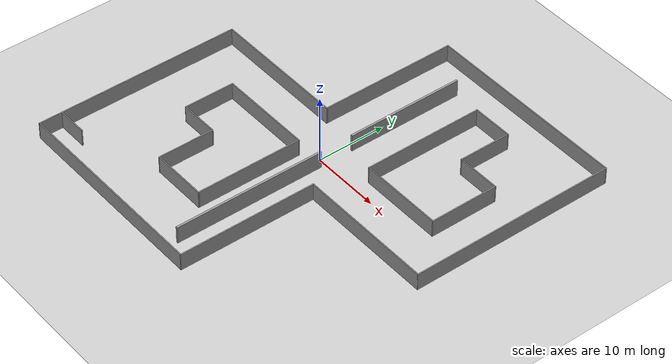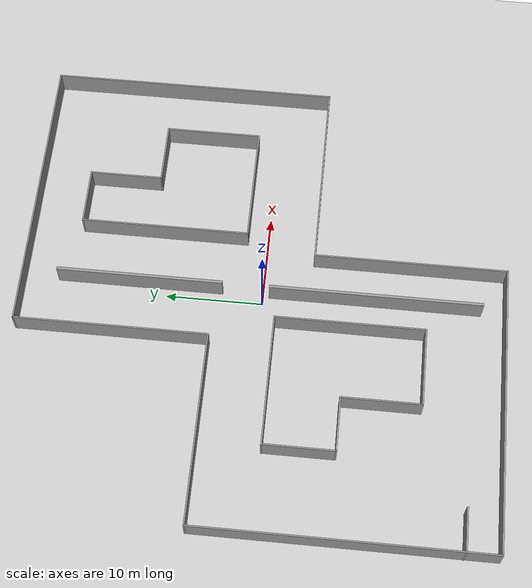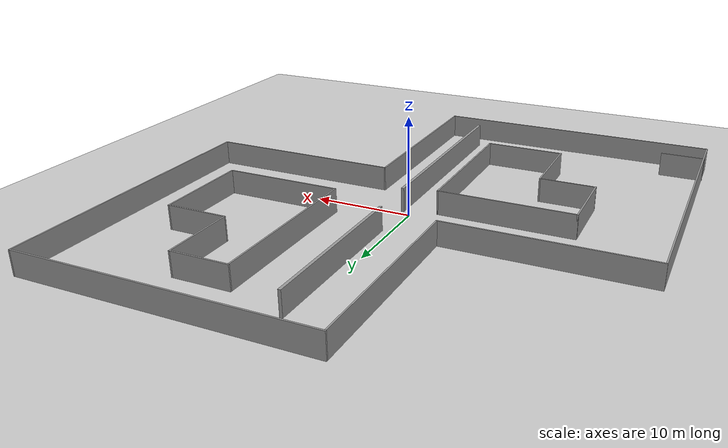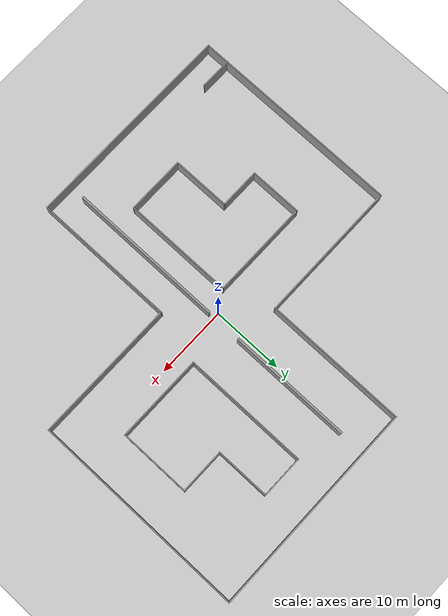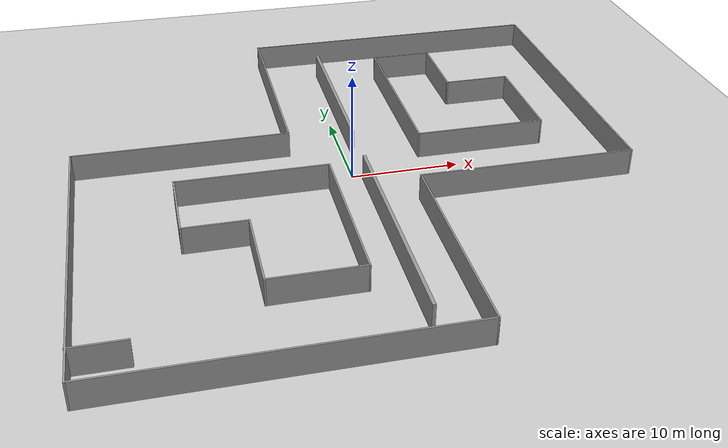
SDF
<sdf version="1.6">
 <world name="default">
  <light name="sun" type="directional">
   <pose>0 0 10 0 -0 0</pose>
   <diffuse>0.8 0.8 0.8 1</diffuse>
   <specular>0.2 0.2 0.2 1</specular>
   <attenuation>
    <range>1000</range>
    <constant>0.9</constant>
    <linear>0.01</linear>
    <quadratic>0.001</quadratic>
   </attenuation>
   <direction>-0.5 0.1 -0.9</direction>
  </light>
  <model name="ground_plane">
   <static>1</static>
   <link name="link">
    <collision name="collision">
     <geometry><plane><normal>0 0 1</normal><size>100 100</size></plane></geometry>
     <surface>
      <contact><collide_bitmask>65535</collide_bitmask></contact>
      <friction><ode><mu>100</mu><mu2>50</mu2></ode></friction>
     </surface>
    </collision>
    <visual name="visual">
     <cast_shadows>0</cast_shadows>
     <geometry><plane><normal>0 0 1</normal><size>100 100</size></plane></geometry>
     <material>
      <script><uri>file://media/materials/scripts/gazebo.material</uri><name>Gazebo/Grey</name></script>
     </material>
    </visual>
   </link>
  </model>
  <gravity>0 0 -9.8</gravity>
  <magnetic_field>6e-06 2.3e-05 -4.2e-05</magnetic_field>
  <atmosphere type="adiabatic"/>
  <physics name="default_physics" default="0" type="ode">
   <max_step_size>0.001</max_step_size>
   <real_time_factor>1</real_time_factor>
   <real_time_update_rate>1000</real_time_update_rate>
  </physics>
  <scene><ambient>0.4 0.4 0.4 1</ambient><background>0.7 0.7 0.7 1</background><shadows>1</shadows></scene>
  <audio><device>default</device></audio>
  <spherical_coordinates>
   <surface_model>EARTH_WGS84</surface_model>
   <latitude_deg>0</latitude_deg>
   <longitude_deg>0</longitude_deg>
   <elevation>0</elevation>
   <heading_deg>0</heading_deg>
  </spherical_coordinates>
  <model name="ext_wall">
   <link name="Wall_35">
    <collision name="Wall_35_Collision">
     <geometry><box><size>30 0.15 2.5</size></box></geometry>
     <pose>0 0 1.25 0 -0 0</pose>
    </collision>
    <visual name="Wall_35_Visual">
     <pose>0 0 1.25 0 -0 0</pose>
     <geometry><box><size>30 0.15 2.5</size></box></geometry>
     <material>
      <script><uri>file://media/materials/scripts/gazebo.material</uri><name>Gazebo/Grey</name></script>
      <ambient>1 1 1 1</ambient>
     </material>
     <meta><layer>0</layer></meta>
    </visual>
    <pose>-24.8294 -9.925 0 0 -0 -1.5708</pose>
   </link>
   <link name="Wall_37">
    <collision name="Wall_37_Collision">
     <geometry><box><size>30 0.15 2.5</size></box></geometry>
     <pose>0 0 1.25 0 -0 0</pose>
    </collision>
    <visual name="Wall_37_Visual">
     <pose>0 0 1.25 0 -0 0</pose>
     <geometry><box><size>30 0.15 2.5</size></box></geometry>
     <material>
      <script><uri>file://media/materials/scripts/gazebo.material</uri><name>Gazebo/Grey</name></script>
      <ambient>1 1 1 1</ambient>
     </material>
     <meta><layer>0</layer></meta>
    </visual>
    <pose>-9.90441 -24.85 0 0 -0 0</pose>
   </link>
   <link name="Wall_38">
    <collision name="Wall_38_Collision">
     <geometry><box><size>20 0.15 2.5</size></box></geometry>
     <pose>0 0 1.25 0 -0 0</pose>
    </collision>
    <visual name="Wall_38_Visual">
     <pose>0 0 1.25 0 -0 0</pose>
     <geometry><box><size>20 0.15 2.5</size></box></geometry>
     <material>
      <script><uri>file://media/materials/scripts/gazebo.material</uri><name>Gazebo/Grey</name></script>
      <ambient>1 1 1 1</ambient>
     </material>
     <meta><layer>0</layer></meta>
    </visual>
    <pose>5.0206 -14.925 0 0 -0 1.5708</pose>
   </link>
   <link name="Wall_45">
    <collision name="Wall_45_Collision">
     <geometry><box><size>20 0.15 2.5</size></box></geometry>
     <pose>0 0 1.25 0 -0 0</pose>
    </collision>
    <visual name="Wall_45_Visual">
     <pose>0 0 1.25 0 -0 0</pose>
     <geometry><box><size>20 0.15 2.5</size></box></geometry>
     <material>
      <script><uri>file://media/materials/scripts/gazebo.material</uri><name>Gazebo/Grey</name></script>
      <ambient>1 1 1 1</ambient>
     </material>
     <meta><layer>0</layer></meta>
    </visual>
    <pose>14.9456 -5 0 0 -0 0</pose>
   </link>
   <link name="Wall_46">
    <collision name="Wall_46_Collision">
     <geometry><box><size>30 0.15 2.5</size></box></geometry>
     <pose>0 0 1.25 0 -0 0</pose>
    </collision>
    <visual name="Wall_46_Visual">
     <pose>0 0 1.25 0 -0 0</pose>
     <geometry><box><size>30 0.15 2.5</size></box></geometry>
     <material>
      <script><uri>file://media/materials/scripts/gazebo.material</uri><name>Gazebo/Grey</name></script>
      <ambient>1 1 1 1</ambient>
     </material>
     <meta><layer>0</layer></meta>
    </visual>
    <pose>24.8706 9.925 0 0 -0 1.5708</pose>
   </link>
   <link name="Wall_47">
    <collision name="Wall_47_Collision">
     <geometry><box><size>30 0.15 2.5</size></box></geometry>
     <pose>0 0 1.25 0 -0 0</pose>
    </collision>
    <visual name="Wall_47_Visual">
     <pose>0 0 1.25 0 -0 0</pose>
     <geometry><box><size>30 0.15 2.5</size></box></geometry>
     <material>
      <script><uri>file://media/materials/scripts/gazebo.material</uri><name>Gazebo/Grey</name></script>
      <ambient>1 1 1 1</ambient>
     </material>
     <meta><layer>0</layer></meta>
    </visual>
    <pose>9.9456 24.85 0 0 -0 3.14159</pose>
   </link>
   <link name="Wall_50">
    <collision name="Wall_50_Collision">
     <geometry><box><size>20 0.15 2.5</size></box></geometry>
     <pose>0 0 1.25 0 -0 0</pose>
    </collision>
    <visual name="Wall_50_Visual">
     <pose>0 0 1.25 0 -0 0</pose>
     <geometry><box><size>20 0.15 2.5</size></box></geometry>
     <material>
      <script><uri>file://media/materials/scripts/gazebo.material</uri><name>Gazebo/Grey</name></script>
      <ambient>1 1 1 1</ambient>
     </material>
     <meta><layer>0</layer></meta>
    </visual>
    <pose>-4.9794 14.925 0 0 -0 -1.5708</pose>
   </link>
   <link name="Wall_51">
    <collision name="Wall_51_Collision">
     <geometry><box><size>20 0.15 2.5</size></box></geometry>
     <pose>0 0 1.25 0 -0 0</pose>
    </collision>
    <visual name="Wall_51_Visual">
     <pose>0 0 1.25 0 -0 0</pose>
     <geometry><box><size>20 0.15 2.5</size></box></geometry>
     <material>
      <script><uri>file://media/materials/scripts/gazebo.material</uri><name>Gazebo/Grey</name></script>
      <ambient>1 1 1 1</ambient>
     </material>
     <meta><layer>0</layer></meta>
    </visual>
    <pose>-14.9044 5 0 0 -0 3.14159</pose>
   </link>
   <link name="Wall_53">
    <collision name="Wall_53_Collision">
     <geometry><box><size>13.8508 0.15 2.5</size></box></geometry>
     <pose>0 0 1.25 0 -0 0</pose>
    </collision>
    <visual name="Wall_53_Visual">
     <pose>0 0 1.25 0 -0 0</pose>
     <geometry><box><size>13.8508 0.15 2.5</size></box></geometry>
     <material>
      <script><uri>file://media/materials/scripts/gazebo.material</uri><name>Gazebo/Grey</name></script>
      <ambient>1 1 1 1</ambient>
     </material>
     <meta><layer>0</layer></meta>
    </visual>
    <pose>-9.24926 -1.45281 0 0 -0 0</pose>
   </link>
   <link name="Wall_54">
    <collision name="Wall_54_Collision">
     <geometry><box><size>15.5 0.15 2.5</size></box></geometry>
     <pose>0 0 1.25 0 -0 0</pose>
    </collision>
    <visual name="Wall_54_Visual">
     <pose>0 0 1.25 0 -0 0</pose>
     <geometry><box><size>15.5 0.15 2.5</size></box></geometry>
     <material>
      <script><uri>file://media/materials/scripts/gazebo.material</uri><name>Gazebo/Grey</name></script>
      <ambient>1 1 1 1</ambient>
     </material>
     <meta><layer>0</layer></meta>
    </visual>
    <pose>-2.39926 -9.12781 0 0 -0 -1.5708</pose>
   </link>
   <link name="Wall_55">
    <collision name="Wall_55_Collision">
     <geometry><box><size>8.25 0.15 2.5</size></box></geometry>
     <pose>0 0 1.25 0 -0 0</pose>
    </collision>
    <visual name="Wall_55_Visual">
     <pose>0 0 1.25 0 -0 0</pose>
     <geometry><box><size>8.25 0.15 2.5</size></box></geometry>
     <material>
      <script><uri>file://media/materials/scripts/gazebo.material</uri><name>Gazebo/Grey</name></script>
      <ambient>1 1 1 1</ambient>
     </material>
     <meta><layer>0</layer></meta>
    </visual>
    <pose>-6.44926 -16.8028 0 0 -0 3.14159</pose>
   </link>
   <link name="Wall_56">
    <collision name="Wall_56_Collision">
     <geometry><box><size>8.25 0.15 2.5</size></box></geometry>
     <pose>0 0 1.25 0 -0 0</pose>
    </collision>
    <visual name="Wall_56_Visual">
     <pose>0 0 1.25 0 -0 0</pose>
     <geometry><box><size>8.25 0.15 2.5</size></box></geometry>
     <material>
      <script><uri>file://media/materials/scripts/gazebo.material</uri><name>Gazebo/Grey</name></script>
      <ambient>1 1 1 1</ambient>
     </material>
     <meta><layer>0</layer></meta>
    </visual>
    <pose>-10.4993 -12.7528 0 0 -0 1.5708</pose>
   </link>
   <link name="Wall_57">
    <collision name="Wall_57_Collision">
     <geometry><box><size>5.75 0.15 2.5</size></box></geometry>
     <pose>0 0 1.25 0 -0 0</pose>
    </collision>
    <visual name="Wall_57_Visual">
     <pose>0 0 1.25 0 -0 0</pose>
     <geometry><box><size>5.75 0.15 2.5</size></box></geometry>
     <material>
      <script><uri>file://media/materials/scripts/gazebo.material</uri><name>Gazebo/Grey</name></script>
      <ambient>1 1 1 1</ambient>
     </material>
     <meta><layer>0</layer></meta>
    </visual>
    <pose>-13.2993 -8.70281 0 0 -0 3.14159</pose>
   </link>
   <link name="Wall_61">
    <collision name="Wall_61_Collision">
     <geometry><box><size>7.4 0.15 2.5</size></box></geometry>
     <pose>0 0 1.25 0 -0 0</pose>
    </collision>
    <visual name="Wall_61_Visual">
     <pose>0 0 1.25 0 -0 0</pose>
     <geometry><box><size>7.4 0.15 2.5</size></box></geometry>
     <material>
      <script><uri>file://media/materials/scripts/gazebo.material</uri><name>Gazebo/Grey</name></script>
      <ambient>1 1 1 1</ambient>
     </material>
     <meta><layer>0</layer></meta>
    </visual>
    <pose>-16.0993 -5.07781 0 0 -0 1.5708</pose>
   </link>
   <link name="Wall_81">
    <collision name="Wall_81_Collision">
     <geometry><box><size>21.8997 0.3 2.5</size></box></geometry>
     <pose>0 0 1.25 0 -0 0</pose>
    </collision>
    <visual name="Wall_81_Visual">
     <pose>0 0 1.25 0 -0 0</pose>
     <geometry><box><size>21.8997 0.3 2.5</size></box></geometry>
     <material>
      <script><uri>file://media/materials/scripts/gazebo.material</uri><name>Gazebo/Grey</name></script>
      <ambient>1 1 1 1</ambient>
     </material>
     <meta><layer>0</layer></meta>
    </visual>
    <pose>0.968843 -11.554 0 0 -0 1.5708</pose>
   </link>
   <link name="Wall_83">
    <collision name="Wall_83_Collision">
     <geometry><box><size>17.1497 0.3 2.5</size></box></geometry>
     <pose>0 0 1.25 0 -0 0</pose>
    </collision>
    <visual name="Wall_83_Visual">
     <pose>0 0 1.25 0 -0 0</pose>
     <geometry><box><size>17.1497 0.3 2.5</size></box></geometry>
     <material>
      <script><uri>file://media/materials/scripts/gazebo.material</uri><name>Gazebo/Grey</name></script>
      <ambient>1 1 1 1</ambient>
     </material>
     <meta><layer>0</layer></meta>
    </visual>
    <pose>0.968843 12.771 0 0 -0 1.5708</pose>
   </link>
   <link name="Wall_85">
    <collision name="Wall_85_Collision">
     <geometry><box><size>17.5 0.15 2.5</size></box></geometry>
     <pose>0 0 1.25 0 -0 0</pose>
    </collision>
    <visual name="Wall_85_Visual">
     <pose>0 0 1.25 0 -0 0</pose>
     <geometry><box><size>17.5 0.15 2.5</size></box></geometry>
     <material>
      <script><uri>file://media/materials/scripts/gazebo.material</uri><name>Gazebo/Grey</name></script>
      <ambient>1 1 1 1</ambient>
     </material>
     <meta><layer>0</layer></meta>
    </visual>
    <pose>6.90221 10.8782 0 0 -0 -1.5708</pose>
   </link>
   <link name="Wall_86">
    <collision name="Wall_86_Collision">
     <geometry><box><size>12.25 0.15 2.5</size></box></geometry>
     <pose>0 0 1.25 0 -0 0</pose>
    </collision>
    <visual name="Wall_86_Visual">
     <pose>0 0 1.25 0 -0 0</pose>
     <geometry><box><size>12.25 0.15 2.5</size></box></geometry>
     <material>
      <script><uri>file://media/materials/scripts/gazebo.material</uri><name>Gazebo/Grey</name></script>
      <ambient>1 1 1 1</ambient>
     </material>
     <meta><layer>0</layer></meta>
    </visual>
    <pose>12.9522 2.20321 0 0 -0 0</pose>
   </link>
   <link name="Wall_87">
    <collision name="Wall_87_Collision">
     <geometry><box><size>10 0.15 2.5</size></box></geometry>
     <pose>0 0 1.25 0 -0 0</pose>
    </collision>
    <visual name="Wall_87_Visual">
     <pose>0 0 1.25 0 -0 0</pose>
     <geometry><box><size>10 0.15 2.5</size></box></geometry>
     <material>
      <script><uri>file://media/materials/scripts/gazebo.material</uri><name>Gazebo/Grey</name></script>
      <ambient>1 1 1 1</ambient>
     </material>
     <meta><layer>0</layer></meta>
    </visual>
    <pose>19.0022 7.12821 0 0 -0 1.5708</pose>
   </link>
   <link name="Wall_88">
    <collision name="Wall_88_Collision">
     <geometry><box><size>6.4 0.15 2.5</size></box></geometry>
     <pose>0 0 1.25 0 -0 0</pose>
    </collision>
    <visual name="Wall_88_Visual">
     <pose>0 0 1.25 0 -0 0</pose>
     <geometry><box><size>6.4 0.15 2.5</size></box></geometry>
     <material>
      <script><uri>file://media/materials/scripts/gazebo.material</uri><name>Gazebo/Grey</name></script>
      <ambient>1 1 1 1</ambient>
     </material>
     <meta><layer>0</layer></meta>
    </visual>
    <pose>15.8772 12.0532 0 0 -0 3.14159</pose>
   </link>
   <link name="Wall_89">
    <collision name="Wall_89_Collision">
     <geometry><box><size>7.65 0.15 2.5</size></box></geometry>
     <pose>0 0 1.25 0 -0 0</pose>
    </collision>
    <visual name="Wall_89_Visual">
     <pose>0 0 1.25 0 -0 0</pose>
     <geometry><box><size>7.65 0.15 2.5</size></box></geometry>
     <material>
      <script><uri>file://media/materials/scripts/gazebo.material</uri><name>Gazebo/Grey</name></script>
      <ambient>1 1 1 1</ambient>
     </material>
     <meta><layer>0</layer></meta>
    </visual>
    <pose>12.7522 15.8032 0 0 -0 1.5708</pose>
   </link>
   <link name="Wall_90">
    <collision name="Wall_90_Collision">
     <geometry><box><size>6 0.15 2.5</size></box></geometry>
     <pose>0 0 1.25 0 -0 0</pose>
    </collision>
    <visual name="Wall_90_Visual">
     <pose>0 0 1.25 0 -0 0</pose>
     <geometry><box><size>6 0.15 2.5</size></box></geometry>
     <material>
      <script><uri>file://media/materials/scripts/gazebo.material</uri><name>Gazebo/Grey</name></script>
      <ambient>1 1 1 1</ambient>
     </material>
     <meta><layer>0</layer></meta>
    </visual>
    <pose>9.82721 19.5532 0 0 -0 3.14159</pose>
   </link>
   <link name="Wall_92">
    <collision name="Wall_92_Collision">
     <geometry><box><size>4.5 0.15 2.5</size></box></geometry>
     <pose>0 0 1.25 0 -0 0</pose>
    </collision>
    <visual name="Wall_92_Visual">
     <pose>0 0 1.25 0 -0 0</pose>
     <geometry><box><size>4.5 0.15 2.5</size></box></geometry>
     <material>
      <script><uri>file://media/materials/scripts/gazebo.material</uri><name>Gazebo/Grey</name></script>
      <ambient>1 1 1 1</ambient>
     </material>
     <meta><layer>0</layer></meta>
    </visual>
    <pose>-22.6956 -21.4771 0 0 -0 0</pose>
   </link>
   <static>1</static>
  </model>
 </world>
</sdf>
